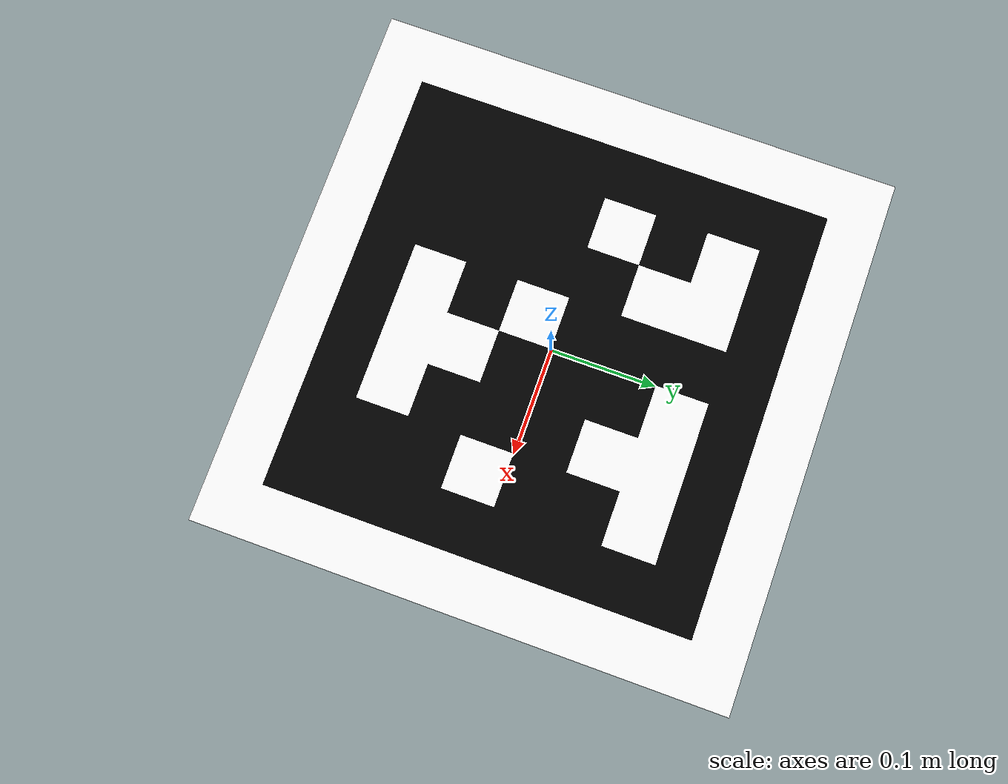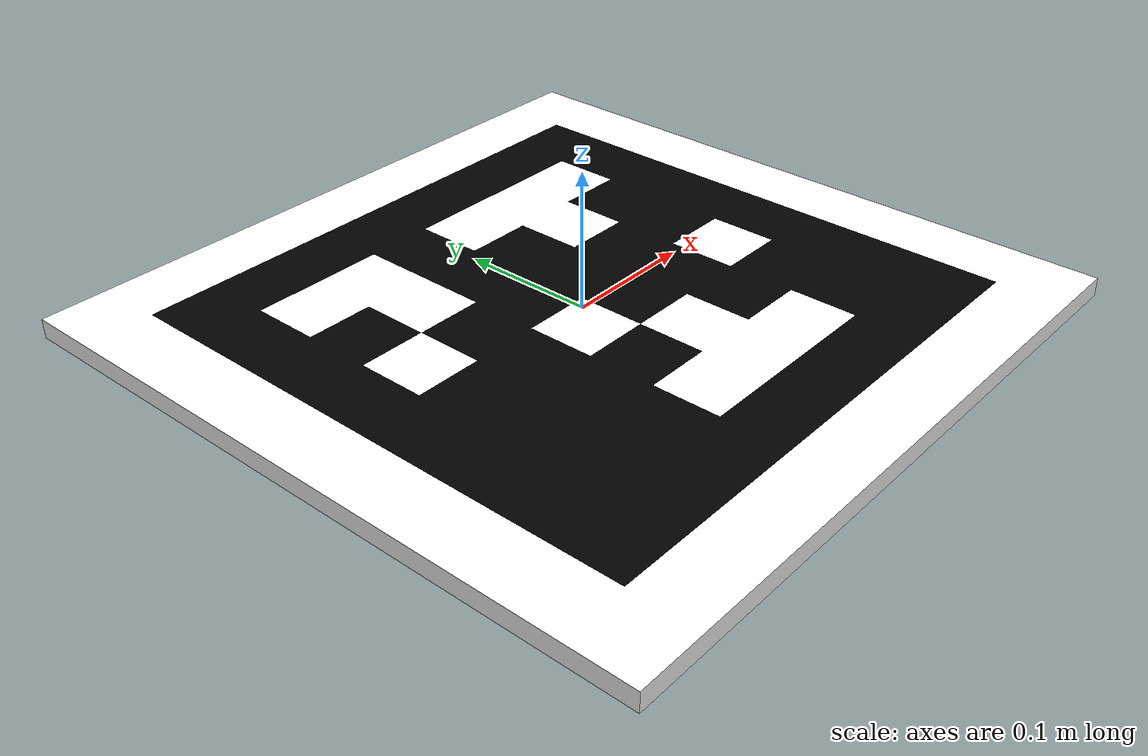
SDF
<?xml version="1.0" ?>

<sdf version="1.6">
  <model name="apriltag_2">
    <static>true</static>
    <link name="link">
      <visual name="visual">
        <geometry>
          <mesh>
            <uri>model://apriltag_2/meshes/apriltag_2.dae</uri>
          <scale>1.0 1.0 1.0</scale></mesh>
        </geometry>
      </visual>
    </link>
  </model>
</sdf>
